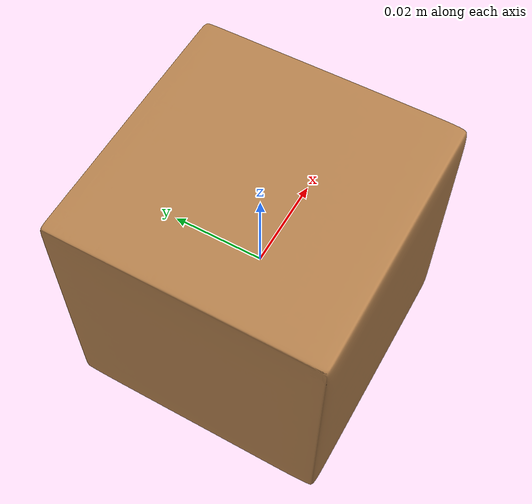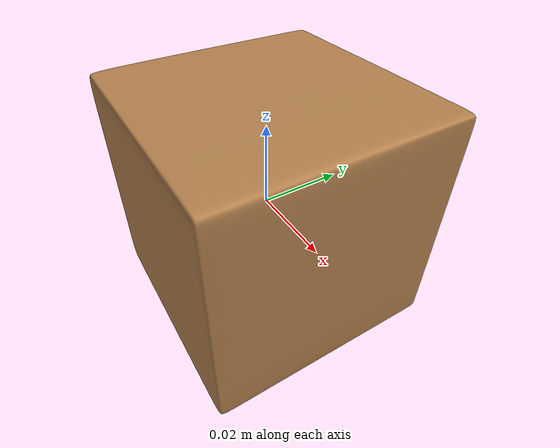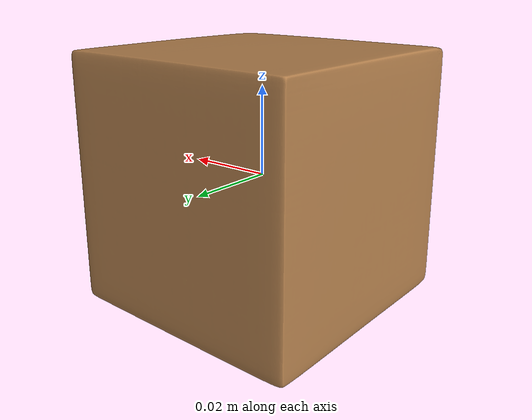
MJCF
<mujoco model="wood_block">
  <asset>
    <texture file="robosuite/models/assets/textures/wood_box_1.png" type="2d" name="wood-box" />
    <material name="MatWood" texture="wood-box" texrepeat="3 3" specular="0.4" shininess="0.1" />
    <mesh file="robosuite/models/assets/objects/meshes/wood_box_1.obj" name="wood_box_1_mesh"/>
  </asset>
  <worldbody>
    <body>
      <body name="object">
        <geom pos="0 0 0" mesh="wood_box_1_mesh" type="mesh" solimp="0.998 0.998 0.001" solref="0.001 1" density="50" friction="0.95 0.3 0.1" material="MatWood" group="1"/>
        <geom pos="0 0 0" mesh="wood_box_1_mesh" type="mesh" solimp="0.998 0.998 0.001" solref="0.001 1" density="50" friction="0.95 0.3 0.1" material="MatWood" group="0"/>
      </body>
      <site rgba="0 0 0 0" size="0.005" pos="0 0 -0.0283362" name="bottom_site"/>
      <site rgba="0 0 0 0" size="0.005" pos="0 0 0.0283362" name="top_site"/>
      <site rgba="0 0 0 0" size="0.005" pos="0.028378 0.028378 0" name="horizontal_radius_site"/>
    </body>
  </worldbody>
</mujoco>
